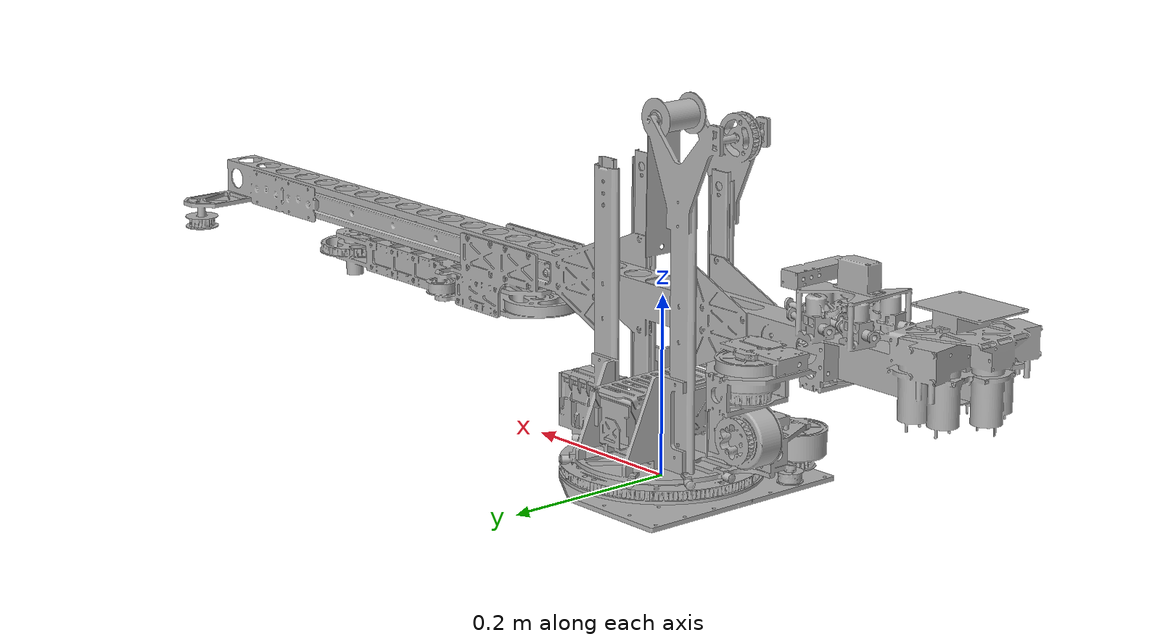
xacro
<robot name="kirin" xmlns:xacro="http://ros.org/wiki/xacro">

  <xacro:arg name="field" default="red" />
  <xacro:property name="field" default="$(arg field)" />

  <material name="default">
    <color rgba="0.7 0.7 0.7 1.0"/>
  </material>

  <!-- link settings -->
  <link name="fix_base">
    <visual name="">
      <origin xyz="0.0 0.0 0.0" rpy="0.0 0.0 ${pi/2}"/>
      <geometry>
        <mesh filename="package://kirin/resources/light/fix.stl"/>
      </geometry>
      <material name="default"/>
    </visual>
  </link>

  <link name="theta_link">
    <visual name="">
      <origin xyz="0.0 0.0 0.0" rpy="0.0 0.0 ${pi/2}"/>
      <geometry>
        <mesh filename="package://kirin/resources/light/theta.stl"/>
      </geometry>
      <material name="default"/>
    </visual>
  </link>

  <link name="z_link">
    <visual name="">
      <origin xyz="0.0 0.0 0.0" rpy="0.0 0.0 ${pi/2}"/>
      <geometry>
        <mesh filename="package://kirin/resources/light/z.stl"/>
      </geometry>
      <material name="default"/>
    </visual>
  </link>

  <link name="r_link">
    <visual name="">
      <origin xyz="0.1725 0.0 0.0" rpy="0.0 0.0 ${pi/2}"/>
      <geometry>
        <mesh filename="package://kirin/resources/light/r.stl"/>
      </geometry>
      <material name="default"/>
    </visual>
  </link>

  <link name="phi_link"/>
  <link name="depart"/>
  <link name="initial_depart"/>

  <!-- joint settings -->
  <joint name="theta_joint" type="continuous">
    <parent link="fix_base"/>
    <child link="theta_link"/>
    <origin xyz="0.0 0.0 0.022" rpy="0.0 0.0 0.0"/>
    <axis xyz="0.0 0.0 1.0"/>
  </joint>

  <joint name="z_joint" type="prismatic">
    <parent link="theta_link"/>
    <child link="z_link"/>
    <origin xyz="0.0 0.0 0.128" rpy="0.0 0.0 0.0"/>
    <axis xyz="0.0 0.0 1.0"/>
    <limit lower="0.0" upper="0.15" effort="100" velocity="2.0"/>
  </joint>

  <joint name="r_joint" type="prismatic">
    <parent link="z_link"/>
    <child link="r_link"/>
    <origin xyz="0.201 0.0 0.0" rpy="0.0 0.0 0.0"/>
    <axis xyz="1.0 0.0 0.0"/>
    <limit lower="0.0" upper="0.413" effort="100" velocity="5.0"/>
  </joint>

  <joint name="phi_joint" type="revolute">
    <parent link="r_link"/>
    <child link="phi_link"/>
    <origin xyz="0.345 0.0 -0.0235" rpy="0.0 0.0 0.0"/>
    <axis xyz="0.0 0.0 1.0"/>
    <limit lower="${-pi}" upper="${pi}" effort="10.0" velocity="${10*pi}"/>
  </joint>

  <joint name="depart_joint" type="fixed">
    <parent link="fix_base"/>
    <child link="depart"/>
    <xacro:if value="${field=='red'}">
      <origin xyz="0.60 0.55 0.225" rpy="0.0 0.0 ${-pi/2}"/>
    </xacro:if>
    <xacro:if value="${field=='blue'}">
      <origin xyz="0.60 -0.55 0.225" rpy="0.0 0.0 ${pi/2}"/>
    </xacro:if>
  </joint>

  <joint name="initial_depart_joint" type="fixed">
    <parent link="fix_base"/>
    <child link="initial_depart"/>
    <xacro:if value="${field=='red'}">
      <origin xyz="0.60 -0.60 0.225" rpy="0.0 0.0 0.0"/>
    </xacro:if>
    <xacro:if value="${field=='blue'}">
      <origin xyz="0.60 0.60 0.225" rpy="0.0 0.0 0.0"/>
    </xacro:if>
  </joint>

</robot>
